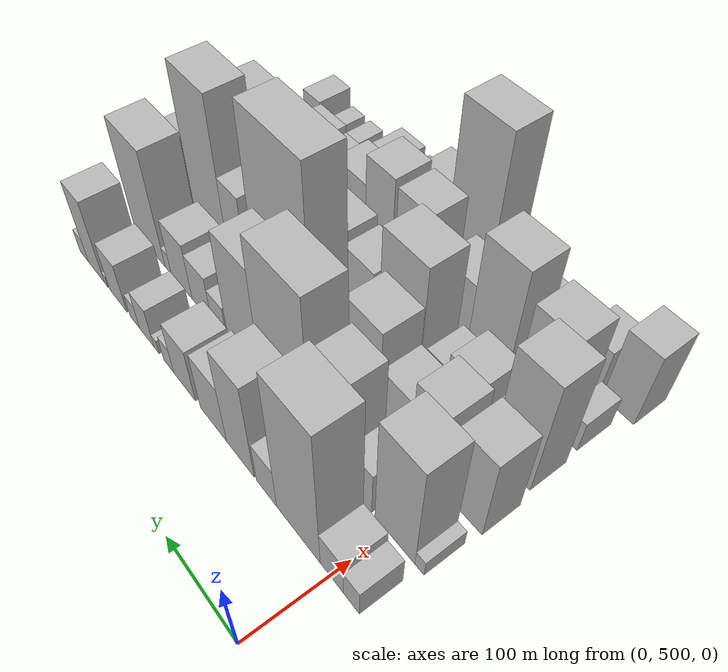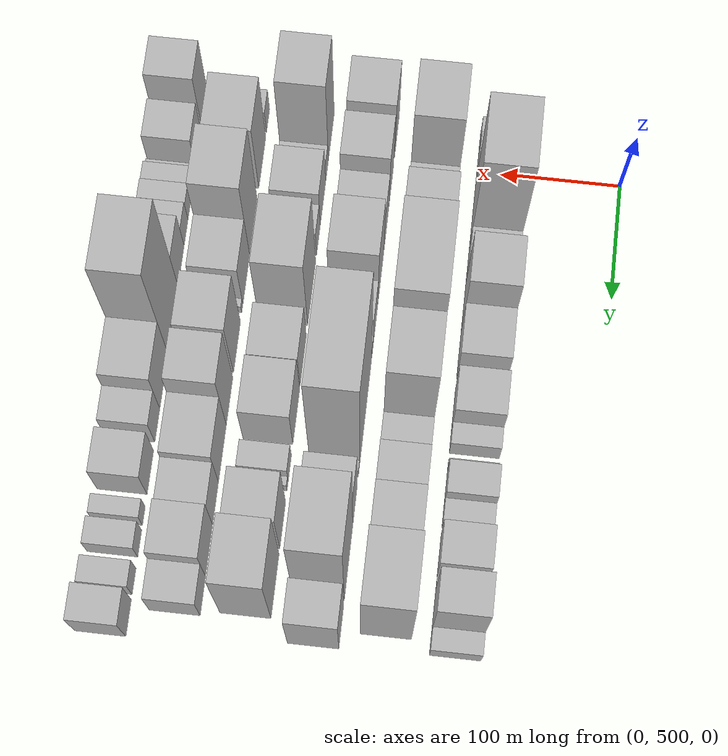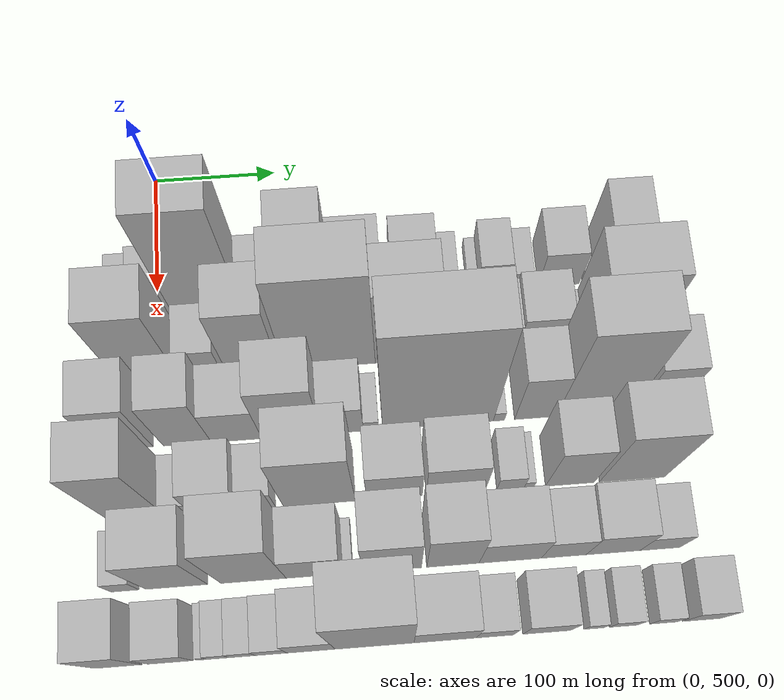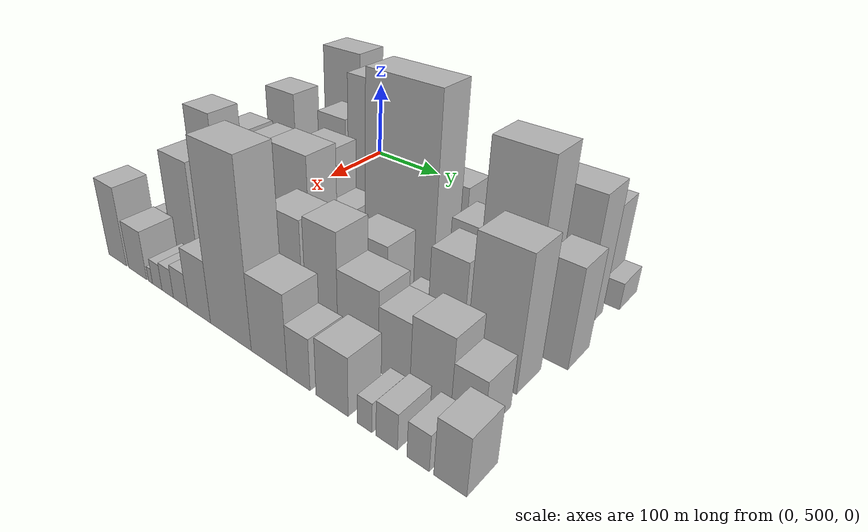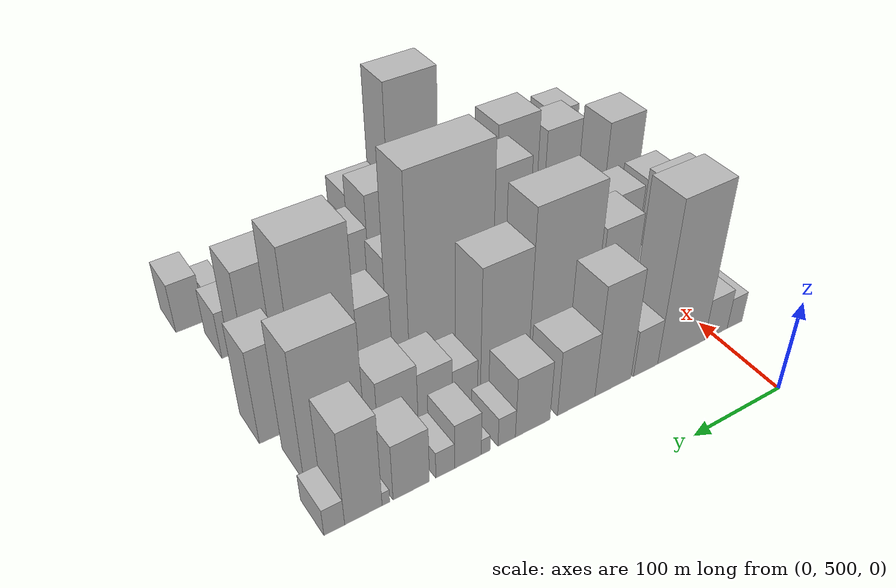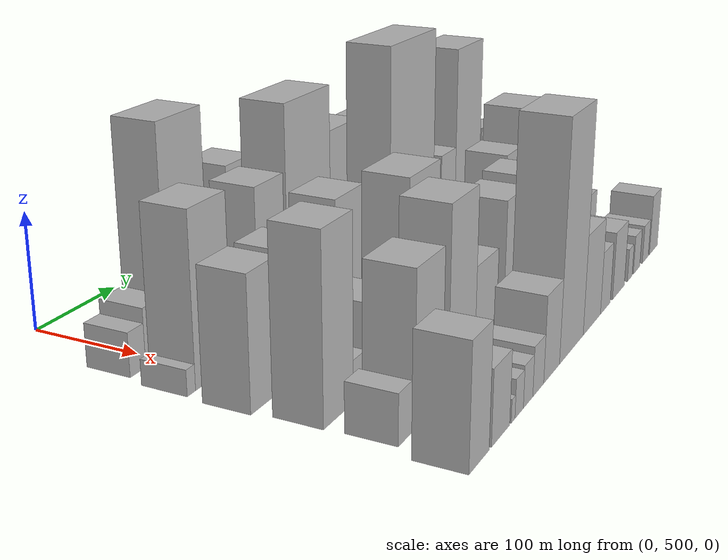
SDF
<sdf version="1.6">
 <world name="default">
  <model name="building_39">
   <static>1</static>
   <pose>100.0000 474.3884 0 0.000000 0.000000 0.000000</pose>
   <link name="link">
    <pose>0 0 18.00 0 0 0</pose>
    <collision name="collision"><geometry><box><size>40.0000 19.0501 36.0000</size></box></geometry></collision>
    <visual name="visual">
     <cast_shadows>0</cast_shadows>
     <geometry><box><size>40.0000 19.0501 36.0000</size></box></geometry>
     <material>
      <script>
       <uri>model://HANNAS_wall/materials/scripts</uri>
       <uri>model://HANNAS_wall/materials/textures</uri>
       <name>vrc/HANNAS_wall</name>
      </script>
     </material>
    </visual>
   </link>
  </model>
  <model name="building_40">
   <static>1</static>
   <pose>100.0000 498.1025 0 0.000000 0.000000 0.000000</pose>
   <link name="link">
    <pose>0 0 24.00 0 0 0</pose>
    <collision name="collision"><geometry><box><size>40.0000 28.3781 48.0000</size></box></geometry></collision>
    <visual name="visual">
     <cast_shadows>0</cast_shadows>
     <geometry><box><size>40.0000 28.3781 48.0000</size></box></geometry>
     <material>
      <script>
       <uri>model://HANNAS_wall/materials/scripts</uri>
       <uri>model://HANNAS_wall/materials/textures</uri>
       <name>vrc/HANNAS_wall</name>
      </script>
     </material>
    </visual>
   </link>
  </model>
  <model name="building_41">
   <static>1</static>
   <pose>100.0000 540.8449 0 0.000000 0.000000 0.000000</pose>
   <link name="link">
    <pose>0 0 91.50 0 0 0</pose>
    <collision name="collision"><geometry><box><size>40.0000 57.1067 183.0000</size></box></geometry></collision>
    <visual name="visual">
     <cast_shadows>0</cast_shadows>
     <geometry><box><size>40.0000 57.1067 183.0000</size></box></geometry>
     <material>
      <script>
       <uri>model://HANNAS_wall/materials/scripts</uri>
       <uri>model://HANNAS_wall/materials/textures</uri>
       <name>vrc/HANNAS_wall</name>
      </script>
     </material>
    </visual>
   </link>
  </model>
  <model name="building_42">
   <static>1</static>
   <pose>100.0000 583.5705 0 0.000000 0.000000 0.000000</pose>
   <link name="link">
    <pose>0 0 27.00 0 0 0</pose>
    <collision name="collision"><geometry><box><size>40.0000 28.3445 54.0000</size></box></geometry></collision>
    <visual name="visual">
     <cast_shadows>0</cast_shadows>
     <geometry><box><size>40.0000 28.3445 54.0000</size></box></geometry>
     <material>
      <script>
       <uri>model://HANNAS_wall/materials/scripts</uri>
       <uri>model://HANNAS_wall/materials/textures</uri>
       <name>vrc/HANNAS_wall</name>
      </script>
     </material>
    </visual>
   </link>
  </model>
  <model name="building_43">
   <static>1</static>
   <pose>100.0000 621.0852 0 0.000000 0.000000 0.000000</pose>
   <link name="link">
    <pose>0 0 63.00 0 0 0</pose>
    <collision name="collision"><geometry><box><size>40.0000 40.6848 126.0000</size></box></geometry></collision>
    <visual name="visual">
     <cast_shadows>0</cast_shadows>
     <geometry><box><size>40.0000 40.6848 126.0000</size></box></geometry>
     <material>
      <script>
       <uri>model://HANNAS_wall/materials/scripts</uri>
       <uri>model://HANNAS_wall/materials/textures</uri>
       <name>vrc/HANNAS_wall</name>
      </script>
     </material>
    </visual>
   </link>
  </model>
  <model name="building_44">
   <static>1</static>
   <pose>100.0000 661.8343 0 0.000000 0.000000 0.000000</pose>
   <link name="link">
    <pose>0 0 37.50 0 0 0</pose>
    <collision name="collision"><geometry><box><size>40.0000 40.8136 75.0000</size></box></geometry></collision>
    <visual name="visual">
     <cast_shadows>0</cast_shadows>
     <geometry><box><size>40.0000 40.8136 75.0000</size></box></geometry>
     <material>
      <script>
       <uri>model://HANNAS_wall/materials/scripts</uri>
       <uri>model://HANNAS_wall/materials/textures</uri>
       <name>vrc/HANNAS_wall</name>
      </script>
     </material>
    </visual>
   </link>
  </model>
  <model name="building_45">
   <static>1</static>
   <pose>100.0000 708.2543 0 0.000000 0.000000 0.000000</pose>
   <link name="link">
    <pose>0 0 34.50 0 0 0</pose>
    <collision name="collision"><geometry><box><size>40.0000 36.0265 69.0000</size></box></geometry></collision>
    <visual name="visual">
     <cast_shadows>0</cast_shadows>
     <geometry><box><size>40.0000 36.0265 69.0000</size></box></geometry>
     <material>
      <script>
       <uri>model://HANNAS_wall/materials/scripts</uri>
       <uri>model://HANNAS_wall/materials/textures</uri>
       <name>vrc/HANNAS_wall</name>
      </script>
     </material>
    </visual>
   </link>
  </model>
  <model name="building_46">
   <static>1</static>
   <pose>100.0000 735.0538 0 0.000000 0.000000 0.000000</pose>
   <link name="link">
    <pose>0 0 16.50 0 0 0</pose>
    <collision name="collision"><geometry><box><size>40.0000 17.5725 33.0000</size></box></geometry></collision>
    <visual name="visual">
     <cast_shadows>0</cast_shadows>
     <geometry><box><size>40.0000 17.5725 33.0000</size></box></geometry>
     <material>
      <script>
       <uri>model://HANNAS_wall/materials/scripts</uri>
       <uri>model://HANNAS_wall/materials/textures</uri>
       <name>vrc/HANNAS_wall</name>
      </script>
     </material>
    </visual>
   </link>
  </model>
  <model name="building_47">
   <static>1</static>
   <pose>100.0000 756.2226 0 0.000000 0.000000 0.000000</pose>
   <link name="link">
    <pose>0 0 9.00 0 0 0</pose>
    <collision name="collision"><geometry><box><size>40.0000 8.7650 18.0000</size></box></geometry></collision>
    <visual name="visual">
     <cast_shadows>0</cast_shadows>
     <geometry><box><size>40.0000 8.7650 18.0000</size></box></geometry>
     <material>
      <script>
       <uri>model://HANNAS_wall/materials/scripts</uri>
       <uri>model://HANNAS_wall/materials/textures</uri>
       <name>vrc/HANNAS_wall</name>
      </script>
     </material>
    </visual>
   </link>
  </model>
  <model name="building_48">
   <static>1</static>
   <pose>100.0000 773.6560 0 0.000000 0.000000 0.000000</pose>
   <link name="link">
    <pose>0 0 25.50 0 0 0</pose>
    <collision name="collision"><geometry><box><size>40.0000 26.1020 51.0000</size></box></geometry></collision>
    <visual name="visual">
     <cast_shadows>0</cast_shadows>
     <geometry><box><size>40.0000 26.1020 51.0000</size></box></geometry>
     <material>
      <script>
       <uri>model://HANNAS_wall/materials/scripts</uri>
       <uri>model://HANNAS_wall/materials/textures</uri>
       <name>vrc/HANNAS_wall</name>
      </script>
     </material>
    </visual>
   </link>
  </model>
  <model name="building_49">
   <static>1</static>
   <pose>100.0000 795.6062 0 0.000000 0.000000 0.000000</pose>
   <link name="link">
    <pose>0 0 15.00 0 0 0</pose>
    <collision name="collision"><geometry><box><size>40.0000 17.7983 30.0000</size></box></geometry></collision>
    <visual name="visual">
     <cast_shadows>0</cast_shadows>
     <geometry><box><size>40.0000 17.7983 30.0000</size></box></geometry>
     <material>
      <script>
       <uri>model://HANNAS_wall/materials/scripts</uri>
       <uri>model://HANNAS_wall/materials/textures</uri>
       <name>vrc/HANNAS_wall</name>
      </script>
     </material>
    </visual>
   </link>
  </model>
  <model name="building_50">
   <static>1</static>
   <pose>100.0000 827.3472 0 0.000000 0.000000 0.000000</pose>
   <link name="link">
    <pose>0 0 31.50 0 0 0</pose>
    <collision name="collision"><geometry><box><size>40.0000 33.6838 63.0000</size></box></geometry></collision>
    <visual name="visual">
     <cast_shadows>0</cast_shadows>
     <geometry><box><size>40.0000 33.6838 63.0000</size></box></geometry>
     <material>
      <script>
       <uri>model://HANNAS_wall/materials/scripts</uri>
       <uri>model://HANNAS_wall/materials/textures</uri>
       <name>vrc/HANNAS_wall</name>
      </script>
     </material>
    </visual>
   </link>
  </model>
  <model name="building_51">
   <static>1</static>
   <pose>100.0000 850.6374 0 0.000000 0.000000 0.000000</pose>
   <link name="link">
    <pose>0 0 7.50 0 0 0</pose>
    <collision name="collision"><geometry><box><size>40.0000 6.8966 15.0000</size></box></geometry></collision>
    <visual name="visual">
     <cast_shadows>0</cast_shadows>
     <geometry><box><size>40.0000 6.8966 15.0000</size></box></geometry>
     <material>
      <script>
       <uri>model://HANNAS_wall/materials/scripts</uri>
       <uri>model://HANNAS_wall/materials/textures</uri>
       <name>vrc/HANNAS_wall</name>
      </script>
     </material>
    </visual>
   </link>
  </model>
  <model name="building_52">
   <static>1</static>
   <pose>100.0000 870.6389 0 0.000000 0.000000 0.000000</pose>
   <link name="link">
    <pose>0 0 52.50 0 0 0</pose>
    <collision name="collision"><geometry><box><size>40.0000 33.1064 105.0000</size></box></geometry></collision>
    <visual name="visual">
     <cast_shadows>0</cast_shadows>
     <geometry><box><size>40.0000 33.1064 105.0000</size></box></geometry>
     <material>
      <script>
       <uri>model://HANNAS_wall/materials/scripts</uri>
       <uri>model://HANNAS_wall/materials/textures</uri>
       <name>vrc/HANNAS_wall</name>
      </script>
     </material>
    </visual>
   </link>
  </model>
  <model name="building_53">
   <static>1</static>
   <pose>100.0000 896.1446 0 0.000000 0.000000 0.000000</pose>
   <link name="link">
    <pose>0 0 15.00 0 0 0</pose>
    <collision name="collision"><geometry><box><size>40.0000 17.9050 30.0000</size></box></geometry></collision>
    <visual name="visual">
     <cast_shadows>0</cast_shadows>
     <geometry><box><size>40.0000 17.9050 30.0000</size></box></geometry>
     <material>
      <script>
       <uri>model://HANNAS_wall/materials/scripts</uri>
       <uri>model://HANNAS_wall/materials/textures</uri>
       <name>vrc/HANNAS_wall</name>
      </script>
     </material>
    </visual>
   </link>
  </model>
  <model name="building_89">
   <static>1</static>
   <pose>155.0000 463.7974 0 0.000000 0.000000 0.000000</pose>
   <link name="link">
    <pose>0 0 10.50 0 0 0</pose>
    <collision name="collision"><geometry><box><size>40.0000 10.4770 21.0000</size></box></geometry></collision>
    <visual name="visual">
     <cast_shadows>0</cast_shadows>
     <geometry><box><size>40.0000 10.4770 21.0000</size></box></geometry>
     <material>
      <script>
       <uri>model://HANNAS_wall/materials/scripts</uri>
       <uri>model://HANNAS_wall/materials/textures</uri>
       <name>vrc/HANNAS_wall</name>
      </script>
     </material>
    </visual>
   </link>
  </model>
  <model name="building_90">
   <static>1</static>
   <pose>155.0000 492.8624 0 0.000000 0.000000 0.000000</pose>
   <link name="link">
    <pose>0 0 69.00 0 0 0</pose>
    <collision name="collision"><geometry><box><size>40.0000 47.6530 138.0000</size></box></geometry></collision>
    <visual name="visual">
     <cast_shadows>0</cast_shadows>
     <geometry><box><size>40.0000 47.6530 138.0000</size></box></geometry>
     <material>
      <script>
       <uri>model://HANNAS_wall/materials/scripts</uri>
       <uri>model://HANNAS_wall/materials/textures</uri>
       <name>vrc/HANNAS_wall</name>
      </script>
     </material>
    </visual>
   </link>
  </model>
  <model name="building_91">
   <static>1</static>
   <pose>155.0000 536.0569 0 0.000000 0.000000 0.000000</pose>
   <link name="link">
    <pose>0 0 28.50 0 0 0</pose>
    <collision name="collision"><geometry><box><size>40.0000 30.7359 57.0000</size></box></geometry></collision>
    <visual name="visual">
     <cast_shadows>0</cast_shadows>
     <geometry><box><size>40.0000 30.7359 57.0000</size></box></geometry>
     <material>
      <script>
       <uri>model://HANNAS_wall/materials/scripts</uri>
       <uri>model://HANNAS_wall/materials/textures</uri>
       <name>vrc/HANNAS_wall</name>
      </script>
     </material>
    </visual>
   </link>
  </model>
  <model name="building_92">
   <static>1</static>
   <pose>155.0000 576.3079 0 0.000000 0.000000 0.000000</pose>
   <link name="link">
    <pose>0 0 64.50 0 0 0</pose>
    <collision name="collision"><geometry><box><size>40.0000 41.7662 129.0000</size></box></geometry></collision>
    <visual name="visual">
     <cast_shadows>0</cast_shadows>
     <geometry><box><size>40.0000 41.7662 129.0000</size></box></geometry>
     <material>
      <script>
       <uri>model://HANNAS_wall/materials/scripts</uri>
       <uri>model://HANNAS_wall/materials/textures</uri>
       <name>vrc/HANNAS_wall</name>
      </script>
     </material>
    </visual>
   </link>
  </model>
  <model name="building_93">
   <static>1</static>
   <pose>155.0000 637.2382 0 0.000000 0.000000 0.000000</pose>
   <link name="link">
    <pose>0 0 91.50 0 0 0</pose>
    <collision name="collision"><geometry><box><size>40.0000 72.0943 183.0000</size></box></geometry></collision>
    <visual name="visual">
     <cast_shadows>0</cast_shadows>
     <geometry><box><size>40.0000 72.0943 183.0000</size></box></geometry>
     <material>
      <script>
       <uri>model://HANNAS_wall/materials/scripts</uri>
       <uri>model://HANNAS_wall/materials/textures</uri>
       <name>vrc/HANNAS_wall</name>
      </script>
     </material>
    </visual>
   </link>
  </model>
  <model name="building_94">
   <static>1</static>
   <pose>155.0000 698.8178 0 0.000000 0.000000 0.000000</pose>
   <link name="link">
    <pose>0 0 72.00 0 0 0</pose>
    <collision name="collision"><geometry><box><size>40.0000 51.0649 144.0000</size></box></geometry></collision>
    <visual name="visual">
     <cast_shadows>0</cast_shadows>
     <geometry><box><size>40.0000 51.0649 144.0000</size></box></geometry>
     <material>
      <script>
       <uri>model://HANNAS_wall/materials/scripts</uri>
       <uri>model://HANNAS_wall/materials/textures</uri>
       <name>vrc/HANNAS_wall</name>
      </script>
     </material>
    </visual>
   </link>
  </model>
  <model name="building_95">
   <static>1</static>
   <pose>155.0000 740.2610 0 0.000000 0.000000 0.000000</pose>
   <link name="link">
    <pose>0 0 22.50 0 0 0</pose>
    <collision name="collision"><geometry><box><size>40.0000 25.8215 45.0000</size></box></geometry></collision>
    <visual name="visual">
     <cast_shadows>0</cast_shadows>
     <geometry><box><size>40.0000 25.8215 45.0000</size></box></geometry>
     <material>
      <script>
       <uri>model://HANNAS_wall/materials/scripts</uri>
       <uri>model://HANNAS_wall/materials/textures</uri>
       <name>vrc/HANNAS_wall</name>
      </script>
     </material>
    </visual>
   </link>
  </model>
  <model name="building_96">
   <static>1</static>
   <pose>155.0000 770.3138 0 0.000000 0.000000 0.000000</pose>
   <link name="link">
    <pose>0 0 30.00 0 0 0</pose>
    <collision name="collision"><geometry><box><size>40.0000 34.2841 60.0000</size></box></geometry></collision>
    <visual name="visual">
     <cast_shadows>0</cast_shadows>
     <geometry><box><size>40.0000 34.2841 60.0000</size></box></geometry>
     <material>
      <script>
       <uri>model://HANNAS_wall/materials/scripts</uri>
       <uri>model://HANNAS_wall/materials/textures</uri>
       <name>vrc/HANNAS_wall</name>
      </script>
     </material>
    </visual>
   </link>
  </model>
  <model name="building_97">
   <static>1</static>
   <pose>155.0000 806.6465 0 0.000000 0.000000 0.000000</pose>
   <link name="link">
    <pose>0 0 36.00 0 0 0</pose>
    <collision name="collision"><geometry><box><size>40.0000 38.3814 72.0000</size></box></geometry></collision>
    <visual name="visual">
     <cast_shadows>0</cast_shadows>
     <geometry><box><size>40.0000 38.3814 72.0000</size></box></geometry>
     <material>
      <script>
       <uri>model://HANNAS_wall/materials/scripts</uri>
       <uri>model://HANNAS_wall/materials/textures</uri>
       <name>vrc/HANNAS_wall</name>
      </script>
     </material>
    </visual>
   </link>
  </model>
  <model name="building_98">
   <static>1</static>
   <pose>155.0000 831.5222 0 0.000000 0.000000 0.000000</pose>
   <link name="link">
    <pose>0 0 13.50 0 0 0</pose>
    <collision name="collision"><geometry><box><size>40.0000 11.3699 27.0000</size></box></geometry></collision>
    <visual name="visual">
     <cast_shadows>0</cast_shadows>
     <geometry><box><size>40.0000 11.3699 27.0000</size></box></geometry>
     <material>
      <script>
       <uri>model://HANNAS_wall/materials/scripts</uri>
       <uri>model://HANNAS_wall/materials/textures</uri>
       <name>vrc/HANNAS_wall</name>
      </script>
     </material>
    </visual>
   </link>
  </model>
  <model name="building_99">
   <static>1</static>
   <pose>155.0000 865.8969 0 0.000000 0.000000 0.000000</pose>
   <link name="link">
    <pose>0 0 72.00 0 0 0</pose>
    <collision name="collision"><geometry><box><size>40.0000 57.3795 144.0000</size></box></geometry></collision>
    <visual name="visual">
     <cast_shadows>0</cast_shadows>
     <geometry><box><size>40.0000 57.3795 144.0000</size></box></geometry>
     <material>
      <script>
       <uri>model://HANNAS_wall/materials/scripts</uri>
       <uri>model://HANNAS_wall/materials/textures</uri>
       <name>vrc/HANNAS_wall</name>
      </script>
     </material>
    </visual>
   </link>
  </model>
  <model name="building_138">
   <static>1</static>
   <pose>210.0000 475.4661 0 0.000000 0.000000 0.000000</pose>
   <link name="link">
    <pose>0 0 52.50 0 0 0</pose>
    <collision name="collision"><geometry><box><size>40.0000 39.5887 105.0000</size></box></geometry></collision>
    <visual name="visual">
     <cast_shadows>0</cast_shadows>
     <geometry><box><size>40.0000 39.5887 105.0000</size></box></geometry>
     <material>
      <script>
       <uri>model://HANNAS_wall/materials/scripts</uri>
       <uri>model://HANNAS_wall/materials/textures</uri>
       <name>vrc/HANNAS_wall</name>
      </script>
     </material>
    </visual>
   </link>
  </model>
  <model name="building_139">
   <static>1</static>
   <pose>210.0000 522.0845 0 0.000000 0.000000 0.000000</pose>
   <link name="link">
    <pose>0 0 52.50 0 0 0</pose>
    <collision name="collision"><geometry><box><size>40.0000 37.6482 105.0000</size></box></geometry></collision>
    <visual name="visual">
     <cast_shadows>0</cast_shadows>
     <geometry><box><size>40.0000 37.6482 105.0000</size></box></geometry>
     <material>
      <script>
       <uri>model://HANNAS_wall/materials/scripts</uri>
       <uri>model://HANNAS_wall/materials/textures</uri>
       <name>vrc/HANNAS_wall</name>
      </script>
     </material>
    </visual>
   </link>
  </model>
  <model name="building_140">
   <static>1</static>
   <pose>210.0000 560.6796 0 0.000000 0.000000 0.000000</pose>
   <link name="link">
    <pose>0 0 37.50 0 0 0</pose>
    <collision name="collision"><geometry><box><size>40.0000 39.5419 75.0000</size></box></geometry></collision>
    <visual name="visual">
     <cast_shadows>0</cast_shadows>
     <geometry><box><size>40.0000 39.5419 75.0000</size></box></geometry>
     <material>
      <script>
       <uri>model://HANNAS_wall/materials/scripts</uri>
       <uri>model://HANNAS_wall/materials/textures</uri>
       <name>vrc/HANNAS_wall</name>
      </script>
     </material>
    </visual>
   </link>
  </model>
  <model name="building_141">
   <static>1</static>
   <pose>210.0000 603.6416 0 0.000000 0.000000 0.000000</pose>
   <link name="link">
    <pose>0 0 60.00 0 0 0</pose>
    <collision name="collision"><geometry><box><size>40.0000 46.3823 120.0000</size></box></geometry></collision>
    <visual name="visual">
     <cast_shadows>0</cast_shadows>
     <geometry><box><size>40.0000 46.3823 120.0000</size></box></geometry>
     <material>
      <script>
       <uri>model://HANNAS_wall/materials/scripts</uri>
       <uri>model://HANNAS_wall/materials/textures</uri>
       <name>vrc/HANNAS_wall</name>
      </script>
     </material>
    </visual>
   </link>
  </model>
  <model name="building_142">
   <static>1</static>
   <pose>210.0000 643.5115 0 0.000000 0.000000 0.000000</pose>
   <link name="link">
    <pose>0 0 31.50 0 0 0</pose>
    <collision name="collision"><geometry><box><size>40.0000 33.3575 63.0000</size></box></geometry></collision>
    <visual name="visual">
     <cast_shadows>0</cast_shadows>
     <geometry><box><size>40.0000 33.3575 63.0000</size></box></geometry>
     <material>
      <script>
       <uri>model://HANNAS_wall/materials/scripts</uri>
       <uri>model://HANNAS_wall/materials/textures</uri>
       <name>vrc/HANNAS_wall</name>
      </script>
     </material>
    </visual>
   </link>
  </model>
  <model name="building_143">
   <static>1</static>
   <pose>210.0000 666.1431 0 0.000000 0.000000 0.000000</pose>
   <link name="link">
    <pose>0 0 12.00 0 0 0</pose>
    <collision name="collision"><geometry><box><size>40.0000 11.9057 24.0000</size></box></geometry></collision>
    <visual name="visual">
     <cast_shadows>0</cast_shadows>
     <geometry><box><size>40.0000 11.9057 24.0000</size></box></geometry>
     <material>
      <script>
       <uri>model://HANNAS_wall/materials/scripts</uri>
       <uri>model://HANNAS_wall/materials/textures</uri>
       <name>vrc/HANNAS_wall</name>
      </script>
     </material>
    </visual>
   </link>
  </model>
  <model name="building_144">
   <static>1</static>
   <pose>210.0000 718.7740 0 0.000000 0.000000 0.000000</pose>
   <link name="link">
    <pose>0 0 109.50 0 0 0</pose>
    <collision name="collision"><geometry><box><size>40.0000 87.3560 219.0000</size></box></geometry></collision>
    <visual name="visual">
     <cast_shadows>0</cast_shadows>
     <geometry><box><size>40.0000 87.3560 219.0000</size></box></geometry>
     <material>
      <script>
       <uri>model://HANNAS_wall/materials/scripts</uri>
       <uri>model://HANNAS_wall/materials/textures</uri>
       <name>vrc/HANNAS_wall</name>
      </script>
     </material>
    </visual>
   </link>
  </model>
  <model name="building_145">
   <static>1</static>
   <pose>210.0000 766.8879 0 0.000000 0.000000 0.000000</pose>
   <link name="link">
    <pose>0 0 10.50 0 0 0</pose>
    <collision name="collision"><geometry><box><size>40.0000 8.8718 21.0000</size></box></geometry></collision>
    <visual name="visual">
     <cast_shadows>0</cast_shadows>
     <geometry><box><size>40.0000 8.8718 21.0000</size></box></geometry>
     <material>
      <script>
       <uri>model://HANNAS_wall/materials/scripts</uri>
       <uri>model://HANNAS_wall/materials/textures</uri>
       <name>vrc/HANNAS_wall</name>
      </script>
     </material>
    </visual>
   </link>
  </model>
  <model name="building_146">
   <static>1</static>
   <pose>210.0000 795.5869 0 0.000000 0.000000 0.000000</pose>
   <link name="link">
    <pose>0 0 51.00 0 0 0</pose>
    <collision name="collision"><geometry><box><size>40.0000 32.5262 102.0000</size></box></geometry></collision>
    <visual name="visual">
     <cast_shadows>0</cast_shadows>
     <geometry><box><size>40.0000 32.5262 102.0000</size></box></geometry>
     <material>
      <script>
       <uri>model://HANNAS_wall/materials/scripts</uri>
       <uri>model://HANNAS_wall/materials/textures</uri>
       <name>vrc/HANNAS_wall</name>
      </script>
     </material>
    </visual>
   </link>
  </model>
  <model name="building_147">
   <static>1</static>
   <pose>210.0000 841.2586 0 0.000000 0.000000 0.000000</pose>
   <link name="link">
    <pose>0 0 96.00 0 0 0</pose>
    <collision name="collision"><geometry><box><size>40.0000 58.8173 192.0000</size></box></geometry></collision>
    <visual name="visual">
     <cast_shadows>0</cast_shadows>
     <geometry><box><size>40.0000 58.8173 192.0000</size></box></geometry>
     <material>
      <script>
       <uri>model://HANNAS_wall/materials/scripts</uri>
       <uri>model://HANNAS_wall/materials/textures</uri>
       <name>vrc/HANNAS_wall</name>
      </script>
     </material>
    </visual>
   </link>
  </model>
  <model name="building_148">
   <static>1</static>
   <pose>210.0000 891.3242 0 0.000000 0.000000 0.000000</pose>
   <link name="link">
    <pose>0 0 52.50 0 0 0</pose>
    <collision name="collision"><geometry><box><size>40.0000 33.3137 105.0000</size></box></geometry></collision>
    <visual name="visual">
     <cast_shadows>0</cast_shadows>
     <geometry><box><size>40.0000 33.3137 105.0000</size></box></geometry>
     <material>
      <script>
       <uri>model://HANNAS_wall/materials/scripts</uri>
       <uri>model://HANNAS_wall/materials/textures</uri>
       <name>vrc/HANNAS_wall</name>
      </script>
     </material>
    </visual>
   </link>
  </model>
  <model name="building_187">
   <static>1</static>
   <pose>265.0000 481.8986 0 0.000000 0.000000 0.000000</pose>
   <link name="link">
    <pose>0 0 72.00 0 0 0</pose>
    <collision name="collision"><geometry><box><size>40.0000 43.6792 144.0000</size></box></geometry></collision>
    <visual name="visual">
     <cast_shadows>0</cast_shadows>
     <geometry><box><size>40.0000 43.6792 144.0000</size></box></geometry>
     <material>
      <script>
       <uri>model://HANNAS_wall/materials/scripts</uri>
       <uri>model://HANNAS_wall/materials/textures</uri>
       <name>vrc/HANNAS_wall</name>
      </script>
     </material>
    </visual>
   </link>
  </model>
  <model name="building_188">
   <static>1</static>
   <pose>265.0000 513.4515 0 0.000000 0.000000 0.000000</pose>
   <link name="link">
    <pose>0 0 16.50 0 0 0</pose>
    <collision name="collision"><geometry><box><size>40.0000 19.4266 33.0000</size></box></geometry></collision>
    <visual name="visual">
     <cast_shadows>0</cast_shadows>
     <geometry><box><size>40.0000 19.4266 33.0000</size></box></geometry>
     <material>
      <script>
       <uri>model://HANNAS_wall/materials/scripts</uri>
       <uri>model://HANNAS_wall/materials/textures</uri>
       <name>vrc/HANNAS_wall</name>
      </script>
     </material>
    </visual>
   </link>
  </model>
  <model name="building_189">
   <static>1</static>
   <pose>265.0000 542.7818 0 0.000000 0.000000 0.000000</pose>
   <link name="link">
    <pose>0 0 34.50 0 0 0</pose>
    <collision name="collision"><geometry><box><size>40.0000 39.2340 69.0000</size></box></geometry></collision>
    <visual name="visual">
     <cast_shadows>0</cast_shadows>
     <geometry><box><size>40.0000 39.2340 69.0000</size></box></geometry>
     <material>
      <script>
       <uri>model://HANNAS_wall/materials/scripts</uri>
       <uri>model://HANNAS_wall/materials/textures</uri>
       <name>vrc/HANNAS_wall</name>
      </script>
     </material>
    </visual>
   </link>
  </model>
  <model name="building_190">
   <static>1</static>
   <pose>265.0000 575.4847 0 0.000000 0.000000 0.000000</pose>
   <link name="link">
    <pose>0 0 24.00 0 0 0</pose>
    <collision name="collision"><geometry><box><size>40.0000 26.1719 48.0000</size></box></geometry></collision>
    <visual name="visual">
     <cast_shadows>0</cast_shadows>
     <geometry><box><size>40.0000 26.1719 48.0000</size></box></geometry>
     <material>
      <script>
       <uri>model://HANNAS_wall/materials/scripts</uri>
       <uri>model://HANNAS_wall/materials/textures</uri>
       <name>vrc/HANNAS_wall</name>
      </script>
     </material>
    </visual>
   </link>
  </model>
  <model name="building_191">
   <static>1</static>
   <pose>265.0000 622.3760 0 0.000000 0.000000 0.000000</pose>
   <link name="link">
    <pose>0 0 70.50 0 0 0</pose>
    <collision name="collision"><geometry><box><size>40.0000 55.6106 141.0000</size></box></geometry></collision>
    <visual name="visual">
     <cast_shadows>0</cast_shadows>
     <geometry><box><size>40.0000 55.6106 141.0000</size></box></geometry>
     <material>
      <script>
       <uri>model://HANNAS_wall/materials/scripts</uri>
       <uri>model://HANNAS_wall/materials/textures</uri>
       <name>vrc/HANNAS_wall</name>
      </script>
     </material>
    </visual>
   </link>
  </model>
  <model name="building_192">
   <static>1</static>
   <pose>265.0000 680.4960 0 0.000000 0.000000 0.000000</pose>
   <link name="link">
    <pose>0 0 37.50 0 0 0</pose>
    <collision name="collision"><geometry><box><size>40.0000 42.6293 75.0000</size></box></geometry></collision>
    <visual name="visual">
     <cast_shadows>0</cast_shadows>
     <geometry><box><size>40.0000 42.6293 75.0000</size></box></geometry>
     <material>
      <script>
       <uri>model://HANNAS_wall/materials/scripts</uri>
       <uri>model://HANNAS_wall/materials/textures</uri>
       <name>vrc/HANNAS_wall</name>
      </script>
     </material>
    </visual>
   </link>
  </model>
  <model name="building_193">
   <static>1</static>
   <pose>265.0000 727.6653 0 0.000000 0.000000 0.000000</pose>
   <link name="link">
    <pose>0 0 42.00 0 0 0</pose>
    <collision name="collision"><geometry><box><size>40.0000 45.7095 84.0000</size></box></geometry></collision>
    <visual name="visual">
     <cast_shadows>0</cast_shadows>
     <geometry><box><size>40.0000 45.7095 84.0000</size></box></geometry>
     <material>
      <script>
       <uri>model://HANNAS_wall/materials/scripts</uri>
       <uri>model://HANNAS_wall/materials/textures</uri>
       <name>vrc/HANNAS_wall</name>
      </script>
     </material>
    </visual>
   </link>
  </model>
  <model name="building_194">
   <static>1</static>
   <pose>265.0000 770.1838 0 0.000000 0.000000 0.000000</pose>
   <link name="link">
    <pose>0 0 18.00 0 0 0</pose>
    <collision name="collision"><geometry><box><size>40.0000 21.3275 36.0000</size></box></geometry></collision>
    <visual name="visual">
     <cast_shadows>0</cast_shadows>
     <geometry><box><size>40.0000 21.3275 36.0000</size></box></geometry>
     <material>
      <script>
       <uri>model://HANNAS_wall/materials/scripts</uri>
       <uri>model://HANNAS_wall/materials/textures</uri>
       <name>vrc/HANNAS_wall</name>
      </script>
     </material>
    </visual>
   </link>
  </model>
  <model name="building_195">
   <static>1</static>
   <pose>265.0000 784.6744 0 0.000000 0.000000 0.000000</pose>
   <link name="link">
    <pose>0 0 9.00 0 0 0</pose>
    <collision name="collision"><geometry><box><size>40.0000 7.6537 18.0000</size></box></geometry></collision>
    <visual name="visual">
     <cast_shadows>0</cast_shadows>
     <geometry><box><size>40.0000 7.6537 18.0000</size></box></geometry>
     <material>
      <script>
       <uri>model://HANNAS_wall/materials/scripts</uri>
       <uri>model://HANNAS_wall/materials/textures</uri>
       <name>vrc/HANNAS_wall</name>
      </script>
     </material>
    </visual>
   </link>
  </model>
  <model name="building_196">
   <static>1</static>
   <pose>265.0000 816.5180 0 0.000000 0.000000 0.000000</pose>
   <link name="link">
    <pose>0 0 52.50 0 0 0</pose>
    <collision name="collision"><geometry><box><size>40.0000 38.0335 105.0000</size></box></geometry></collision>
    <visual name="visual">
     <cast_shadows>0</cast_shadows>
     <geometry><box><size>40.0000 38.0335 105.0000</size></box></geometry>
     <material>
      <script>
       <uri>model://HANNAS_wall/materials/scripts</uri>
       <uri>model://HANNAS_wall/materials/textures</uri>
       <name>vrc/HANNAS_wall</name>
      </script>
     </material>
    </visual>
   </link>
  </model>
  <model name="building_197">
   <static>1</static>
   <pose>265.0000 864.9848 0 0.000000 0.000000 0.000000</pose>
   <link name="link">
    <pose>0 0 69.00 0 0 0</pose>
    <collision name="collision"><geometry><box><size>40.0000 50.9001 138.0000</size></box></geometry></collision>
    <visual name="visual">
     <cast_shadows>0</cast_shadows>
     <geometry><box><size>40.0000 50.9001 138.0000</size></box></geometry>
     <material>
      <script>
       <uri>model://HANNAS_wall/materials/scripts</uri>
       <uri>model://HANNAS_wall/materials/textures</uri>
       <name>vrc/HANNAS_wall</name>
      </script>
     </material>
    </visual>
   </link>
  </model>
  <model name="building_233">
   <static>1</static>
   <pose>320.0000 472.7233 0 0.000000 0.000000 0.000000</pose>
   <link name="link">
    <pose>0 0 19.50 0 0 0</pose>
    <collision name="collision"><geometry><box><size>40.0000 21.1401 39.0000</size></box></geometry></collision>
    <visual name="visual">
     <cast_shadows>0</cast_shadows>
     <geometry><box><size>40.0000 21.1401 39.0000</size></box></geometry>
     <material>
      <script>
       <uri>model://HANNAS_wall/materials/scripts</uri>
       <uri>model://HANNAS_wall/materials/textures</uri>
       <name>vrc/HANNAS_wall</name>
      </script>
     </material>
    </visual>
   </link>
  </model>
  <model name="building_234">
   <static>1</static>
   <pose>320.0000 511.5528 0 0.000000 0.000000 0.000000</pose>
   <link name="link">
    <pose>0 0 58.50 0 0 0</pose>
    <collision name="collision"><geometry><box><size>40.0000 46.5190 117.0000</size></box></geometry></collision>
    <visual name="visual">
     <cast_shadows>0</cast_shadows>
     <geometry><box><size>40.0000 46.5190 117.0000</size></box></geometry>
     <material>
      <script>
       <uri>model://HANNAS_wall/materials/scripts</uri>
       <uri>model://HANNAS_wall/materials/textures</uri>
       <name>vrc/HANNAS_wall</name>
      </script>
     </material>
    </visual>
   </link>
  </model>
  <model name="building_235">
   <static>1</static>
   <pose>320.0000 569.4947 0 0.000000 0.000000 0.000000</pose>
   <link name="link">
    <pose>0 0 72.00 0 0 0</pose>
    <collision name="collision"><geometry><box><size>40.0000 49.3646 144.0000</size></box></geometry></collision>
    <visual name="visual">
     <cast_shadows>0</cast_shadows>
     <geometry><box><size>40.0000 49.3646 144.0000</size></box></geometry>
     <material>
      <script>
       <uri>model://HANNAS_wall/materials/scripts</uri>
       <uri>model://HANNAS_wall/materials/textures</uri>
       <name>vrc/HANNAS_wall</name>
      </script>
     </material>
    </visual>
   </link>
  </model>
  <model name="building_236">
   <static>1</static>
   <pose>320.0000 615.8633 0 0.000000 0.000000 0.000000</pose>
   <link name="link">
    <pose>0 0 40.50 0 0 0</pose>
    <collision name="collision"><geometry><box><size>40.0000 43.3726 81.0000</size></box></geometry></collision>
    <visual name="visual">
     <cast_shadows>0</cast_shadows>
     <geometry><box><size>40.0000 43.3726 81.0000</size></box></geometry>
     <material>
      <script>
       <uri>model://HANNAS_wall/materials/scripts</uri>
       <uri>model://HANNAS_wall/materials/textures</uri>
       <name>vrc/HANNAS_wall</name>
      </script>
     </material>
    </visual>
   </link>
  </model>
  <model name="building_237">
   <static>1</static>
   <pose>320.0000 641.2283 0 0.000000 0.000000 0.000000</pose>
   <link name="link">
    <pose>0 0 7.50 0 0 0</pose>
    <collision name="collision"><geometry><box><size>40.0000 7.3574 15.0000</size></box></geometry></collision>
    <visual name="visual">
     <cast_shadows>0</cast_shadows>
     <geometry><box><size>40.0000 7.3574 15.0000</size></box></geometry>
     <material>
      <script>
       <uri>model://HANNAS_wall/materials/scripts</uri>
       <uri>model://HANNAS_wall/materials/textures</uri>
       <name>vrc/HANNAS_wall</name>
      </script>
     </material>
    </visual>
   </link>
  </model>
  <model name="building_238">
   <static>1</static>
   <pose>320.0000 674.7308 0 0.000000 0.000000 0.000000</pose>
   <link name="link">
    <pose>0 0 57.00 0 0 0</pose>
    <collision name="collision"><geometry><box><size>40.0000 43.6476 114.0000</size></box></geometry></collision>
    <visual name="visual">
     <cast_shadows>0</cast_shadows>
     <geometry><box><size>40.0000 43.6476 114.0000</size></box></geometry>
     <material>
      <script>
       <uri>model://HANNAS_wall/materials/scripts</uri>
       <uri>model://HANNAS_wall/materials/textures</uri>
       <name>vrc/HANNAS_wall</name>
      </script>
     </material>
    </visual>
   </link>
  </model>
  <model name="building_239">
   <static>1</static>
   <pose>320.0000 720.4766 0 0.000000 0.000000 0.000000</pose>
   <link name="link">
    <pose>0 0 60.00 0 0 0</pose>
    <collision name="collision"><geometry><box><size>40.0000 39.8440 120.0000</size></box></geometry></collision>
    <visual name="visual">
     <cast_shadows>0</cast_shadows>
     <geometry><box><size>40.0000 39.8440 120.0000</size></box></geometry>
     <material>
      <script>
       <uri>model://HANNAS_wall/materials/scripts</uri>
       <uri>model://HANNAS_wall/materials/textures</uri>
       <name>vrc/HANNAS_wall</name>
      </script>
     </material>
    </visual>
   </link>
  </model>
  <model name="building_240">
   <static>1</static>
   <pose>320.0000 764.0721 0 0.000000 0.000000 0.000000</pose>
   <link name="link">
    <pose>0 0 42.00 0 0 0</pose>
    <collision name="collision"><geometry><box><size>40.0000 47.3472 84.0000</size></box></geometry></collision>
    <visual name="visual">
     <cast_shadows>0</cast_shadows>
     <geometry><box><size>40.0000 47.3472 84.0000</size></box></geometry>
     <material>
      <script>
       <uri>model://HANNAS_wall/materials/scripts</uri>
       <uri>model://HANNAS_wall/materials/textures</uri>
       <name>vrc/HANNAS_wall</name>
      </script>
     </material>
    </visual>
   </link>
  </model>
  <model name="building_241">
   <static>1</static>
   <pose>320.0000 804.9975 0 0.000000 0.000000 0.000000</pose>
   <link name="link">
    <pose>0 0 34.50 0 0 0</pose>
    <collision name="collision"><geometry><box><size>40.0000 34.5035 69.0000</size></box></geometry></collision>
    <visual name="visual">
     <cast_shadows>0</cast_shadows>
     <geometry><box><size>40.0000 34.5035 69.0000</size></box></geometry>
     <material>
      <script>
       <uri>model://HANNAS_wall/materials/scripts</uri>
       <uri>model://HANNAS_wall/materials/textures</uri>
       <name>vrc/HANNAS_wall</name>
      </script>
     </material>
    </visual>
   </link>
  </model>
  <model name="building_242">
   <static>1</static>
   <pose>320.0000 842.8383 0 0.000000 0.000000 0.000000</pose>
   <link name="link">
    <pose>0 0 39.00 0 0 0</pose>
    <collision name="collision"><geometry><box><size>40.0000 41.1780 78.0000</size></box></geometry></collision>
    <visual name="visual">
     <cast_shadows>0</cast_shadows>
     <geometry><box><size>40.0000 41.1780 78.0000</size></box></geometry>
     <material>
      <script>
       <uri>model://HANNAS_wall/materials/scripts</uri>
       <uri>model://HANNAS_wall/materials/textures</uri>
       <name>vrc/HANNAS_wall</name>
      </script>
     </material>
    </visual>
   </link>
  </model>
  <model name="building_243">
   <static>1</static>
   <pose>320.0000 878.8590 0 0.000000 0.000000 0.000000</pose>
   <link name="link">
    <pose>0 0 27.00 0 0 0</pose>
    <collision name="collision"><geometry><box><size>40.0000 30.8633 54.0000</size></box></geometry></collision>
    <visual name="visual">
     <cast_shadows>0</cast_shadows>
     <geometry><box><size>40.0000 30.8633 54.0000</size></box></geometry>
     <material>
      <script>
       <uri>model://HANNAS_wall/materials/scripts</uri>
       <uri>model://HANNAS_wall/materials/textures</uri>
       <name>vrc/HANNAS_wall</name>
      </script>
     </material>
    </visual>
   </link>
  </model>
  <model name="building_281">
   <static>1</static>
   <pose>375.0000 467.7833 0 0.000000 0.000000 0.000000</pose>
   <link name="link">
    <pose>0 0 46.50 0 0 0</pose>
    <collision name="collision"><geometry><box><size>40.0000 34.5592 93.0000</size></box></geometry></collision>
    <visual name="visual">
     <cast_shadows>0</cast_shadows>
     <geometry><box><size>40.0000 34.5592 93.0000</size></box></geometry>
     <material>
      <script>
       <uri>model://HANNAS_wall/materials/scripts</uri>
       <uri>model://HANNAS_wall/materials/textures</uri>
       <name>vrc/HANNAS_wall</name>
      </script>
     </material>
    </visual>
   </link>
  </model>
  <model name="building_282">
   <static>1</static>
   <pose>375.0000 505.8705 0 0.000000 0.000000 0.000000</pose>
   <link name="link">
    <pose>0 0 28.50 0 0 0</pose>
    <collision name="collision"><geometry><box><size>40.0000 33.6152 57.0000</size></box></geometry></collision>
    <visual name="visual">
     <cast_shadows>0</cast_shadows>
     <geometry><box><size>40.0000 33.6152 57.0000</size></box></geometry>
     <material>
      <script>
       <uri>model://HANNAS_wall/materials/scripts</uri>
       <uri>model://HANNAS_wall/materials/textures</uri>
       <name>vrc/HANNAS_wall</name>
      </script>
     </material>
    </visual>
   </link>
  </model>
  <model name="building_283">
   <static>1</static>
   <pose>375.0000 529.3356 0 0.000000 0.000000 0.000000</pose>
   <link name="link">
    <pose>0 0 9.00 0 0 0</pose>
    <collision name="collision"><geometry><box><size>40.0000 7.3149 18.0000</size></box></geometry></collision>
    <visual name="visual">
     <cast_shadows>0</cast_shadows>
     <geometry><box><size>40.0000 7.3149 18.0000</size></box></geometry>
     <material>
      <script>
       <uri>model://HANNAS_wall/materials/scripts</uri>
       <uri>model://HANNAS_wall/materials/textures</uri>
       <name>vrc/HANNAS_wall</name>
      </script>
     </material>
    </visual>
   </link>
  </model>
  <model name="building_284">
   <static>1</static>
   <pose>375.0000 541.3019 0 0.000000 0.000000 0.000000</pose>
   <link name="link">
    <pose>0 0 15.00 0 0 0</pose>
    <collision name="collision"><geometry><box><size>40.0000 16.6178 30.0000</size></box></geometry></collision>
    <visual name="visual">
     <cast_shadows>0</cast_shadows>
     <geometry><box><size>40.0000 16.6178 30.0000</size></box></geometry>
     <material>
      <script>
       <uri>model://HANNAS_wall/materials/scripts</uri>
       <uri>model://HANNAS_wall/materials/textures</uri>
       <name>vrc/HANNAS_wall</name>
      </script>
     </material>
    </visual>
   </link>
  </model>
  <model name="building_285">
   <static>1</static>
   <pose>375.0000 559.2867 0 0.000000 0.000000 0.000000</pose>
   <link name="link">
    <pose>0 0 16.50 0 0 0</pose>
    <collision name="collision"><geometry><box><size>40.0000 19.3516 33.0000</size></box></geometry></collision>
    <visual name="visual">
     <cast_shadows>0</cast_shadows>
     <geometry><box><size>40.0000 19.3516 33.0000</size></box></geometry>
     <material>
      <script>
       <uri>model://HANNAS_wall/materials/scripts</uri>
       <uri>model://HANNAS_wall/materials/textures</uri>
       <name>vrc/HANNAS_wall</name>
      </script>
     </material>
    </visual>
   </link>
  </model>
  <model name="building_286">
   <static>1</static>
   <pose>375.0000 580.6532 0 0.000000 0.000000 0.000000</pose>
   <link name="link">
    <pose>0 0 19.50 0 0 0</pose>
    <collision name="collision"><geometry><box><size>40.0000 23.3815 39.0000</size></box></geometry></collision>
    <visual name="visual">
     <cast_shadows>0</cast_shadows>
     <geometry><box><size>40.0000 23.3815 39.0000</size></box></geometry>
     <material>
      <script>
       <uri>model://HANNAS_wall/materials/scripts</uri>
       <uri>model://HANNAS_wall/materials/textures</uri>
       <name>vrc/HANNAS_wall</name>
      </script>
     </material>
    </visual>
   </link>
  </model>
  <model name="building_287">
   <static>1</static>
   <pose>375.0000 610.1993 0 0.000000 0.000000 0.000000</pose>
   <link name="link">
    <pose>0 0 34.50 0 0 0</pose>
    <collision name="collision"><geometry><box><size>40.0000 35.7106 69.0000</size></box></geometry></collision>
    <visual name="visual">
     <cast_shadows>0</cast_shadows>
     <geometry><box><size>40.0000 35.7106 69.0000</size></box></geometry>
     <material>
      <script>
       <uri>model://HANNAS_wall/materials/scripts</uri>
       <uri>model://HANNAS_wall/materials/textures</uri>
       <name>vrc/HANNAS_wall</name>
      </script>
     </material>
    </visual>
   </link>
  </model>
  <model name="building_288">
   <static>1</static>
   <pose>375.0000 657.2467 0 0.000000 0.000000 0.000000</pose>
   <link name="link">
    <pose>0 0 96.00 0 0 0</pose>
    <collision name="collision"><geometry><box><size>40.0000 58.3841 192.0000</size></box></geometry></collision>
    <visual name="visual">
     <cast_shadows>0</cast_shadows>
     <geometry><box><size>40.0000 58.3841 192.0000</size></box></geometry>
     <material>
      <script>
       <uri>model://HANNAS_wall/materials/scripts</uri>
       <uri>model://HANNAS_wall/materials/textures</uri>
       <name>vrc/HANNAS_wall</name>
      </script>
     </material>
    </visual>
   </link>
  </model>
  <model name="building_289">
   <static>1</static>
   <pose>375.0000 709.6719 0 0.000000 0.000000 0.000000</pose>
   <link name="link">
    <pose>0 0 42.00 0 0 0</pose>
    <collision name="collision"><geometry><box><size>40.0000 46.4664 84.0000</size></box></geometry></collision>
    <visual name="visual">
     <cast_shadows>0</cast_shadows>
     <geometry><box><size>40.0000 46.4664 84.0000</size></box></geometry>
     <material>
      <script>
       <uri>model://HANNAS_wall/materials/scripts</uri>
       <uri>model://HANNAS_wall/materials/textures</uri>
       <name>vrc/HANNAS_wall</name>
      </script>
     </material>
    </visual>
   </link>
  </model>
  <model name="building_290">
   <static>1</static>
   <pose>375.0000 746.8276 0 0.000000 0.000000 0.000000</pose>
   <link name="link">
    <pose>0 0 27.00 0 0 0</pose>
    <collision name="collision"><geometry><box><size>40.0000 27.8449 54.0000</size></box></geometry></collision>
    <visual name="visual">
     <cast_shadows>0</cast_shadows>
     <geometry><box><size>40.0000 27.8449 54.0000</size></box></geometry>
     <material>
      <script>
       <uri>model://HANNAS_wall/materials/scripts</uri>
       <uri>model://HANNAS_wall/materials/textures</uri>
       <name>vrc/HANNAS_wall</name>
      </script>
     </material>
    </visual>
   </link>
  </model>
  <model name="building_291">
   <static>1</static>
   <pose>375.0000 785.7046 0 0.000000 0.000000 0.000000</pose>
   <link name="link">
    <pose>0 0 30.00 0 0 0</pose>
    <collision name="collision"><geometry><box><size>40.0000 35.9092 60.0000</size></box></geometry></collision>
    <visual name="visual">
     <cast_shadows>0</cast_shadows>
     <geometry><box><size>40.0000 35.9092 60.0000</size></box></geometry>
     <material>
      <script>
       <uri>model://HANNAS_wall/materials/scripts</uri>
       <uri>model://HANNAS_wall/materials/textures</uri>
       <name>vrc/HANNAS_wall</name>
      </script>
     </material>
    </visual>
   </link>
  </model>
  <model name="building_292">
   <static>1</static>
   <pose>375.0000 821.2045 0 0.000000 0.000000 0.000000</pose>
   <link name="link">
    <pose>0 0 15.00 0 0 0</pose>
    <collision name="collision"><geometry><box><size>40.0000 15.0905 30.0000</size></box></geometry></collision>
    <visual name="visual">
     <cast_shadows>0</cast_shadows>
     <geometry><box><size>40.0000 15.0905 30.0000</size></box></geometry>
     <material>
      <script>
       <uri>model://HANNAS_wall/materials/scripts</uri>
       <uri>model://HANNAS_wall/materials/textures</uri>
       <name>vrc/HANNAS_wall</name>
      </script>
     </material>
    </visual>
   </link>
  </model>
  <model name="building_293">
   <static>1</static>
   <pose>375.0000 843.4285 0 0.000000 0.000000 0.000000</pose>
   <link name="link">
    <pose>0 0 18.00 0 0 0</pose>
    <collision name="collision"><geometry><box><size>40.0000 21.3576 36.0000</size></box></geometry></collision>
    <visual name="visual">
     <cast_shadows>0</cast_shadows>
     <geometry><box><size>40.0000 21.3576 36.0000</size></box></geometry>
     <material>
      <script>
       <uri>model://HANNAS_wall/materials/scripts</uri>
       <uri>model://HANNAS_wall/materials/textures</uri>
       <name>vrc/HANNAS_wall</name>
      </script>
     </material>
    </visual>
   </link>
  </model>
  <model name="building_294">
   <static>1</static>
   <pose>375.0000 873.5157 0 0.000000 0.000000 0.000000</pose>
   <link name="link">
    <pose>0 0 18.00 0 0 0</pose>
    <collision name="collision"><geometry><box><size>40.0000 20.8168 36.0000</size></box></geometry></collision>
    <visual name="visual">
     <cast_shadows>0</cast_shadows>
     <geometry><box><size>40.0000 20.8168 36.0000</size></box></geometry>
     <material>
      <script>
       <uri>model://HANNAS_wall/materials/scripts</uri>
       <uri>model://HANNAS_wall/materials/textures</uri>
       <name>vrc/HANNAS_wall</name>
      </script>
     </material>
    </visual>
   </link>
  </model>
  <model name="building_295">
   <static>1</static>
   <pose>375.0000 902.2708 0 0.000000 0.000000 0.000000</pose>
   <link name="link">
    <pose>0 0 28.50 0 0 0</pose>
    <collision name="collision"><geometry><box><size>40.0000 28.6933 57.0000</size></box></geometry></collision>
    <visual name="visual">
     <cast_shadows>0</cast_shadows>
     <geometry><box><size>40.0000 28.6933 57.0000</size></box></geometry>
     <material>
      <script>
       <uri>model://HANNAS_wall/materials/scripts</uri>
       <uri>model://HANNAS_wall/materials/textures</uri>
       <name>vrc/HANNAS_wall</name>
      </script>
     </material>
    </visual>
   </link>
  </model>
 </world>
</sdf>
